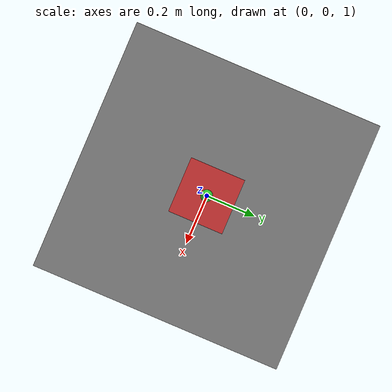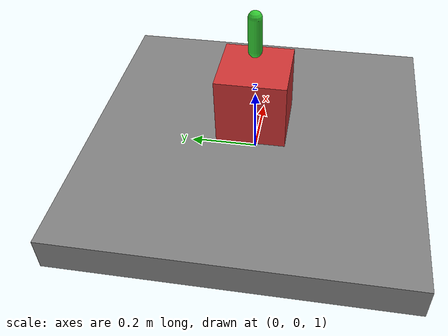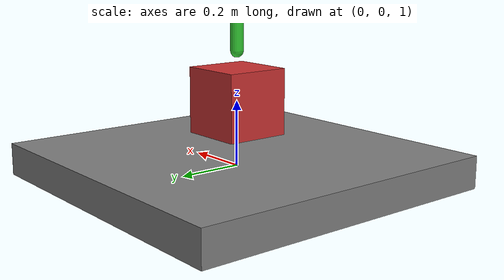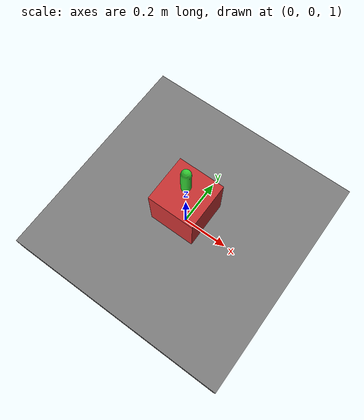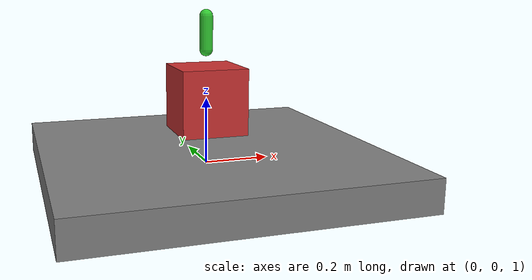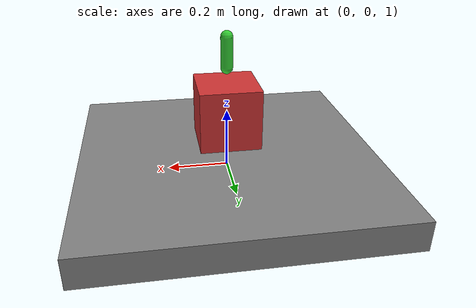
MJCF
<mujoco model="actuators">
  <worldbody>
    <!-- Fixed base -->
    <body name="base" pos="0 0 1">
      <geom name="base_geom" type="box" size="0.5 0.5 0.05" rgba="0.5 0.5 0.5 1"/>
      <site name="base_site" pos="0 0 0"/>

      <!-- Movable box with slide joint -->
      <body name="box" pos="0 0 0.2">
        <geom name="box_geom" type="box" size="0.1 0.1 0.1" rgba="0.8 0.2 0.2 1"/>
        <joint name="box_joint" type="slide" axis="0 0 1"/>
        <site name="box_site" pos="0 0 0"/>

        <!-- Child body with hinge joint -->
        <body name="child" pos="0 0 0.2">
          <joint name="child_joint" type="hinge" axis="1 0 0" limited="true" range="0 0.5"/>
          <geom name="child_geom" type="capsule" size="0.02 0.05" rgba="0.2 0.8 0.2 1"/>
          <site name="child_site" pos="0 0 0"/>
        </body>
      </body>
    </body>
  </worldbody>

  <actuator>
    <!-- Joint actuators -->
    <motor joint="box_joint" gear="100" ctrllimited="true" ctrlrange="-1 1" group="1"/>
    <position joint="child_joint" gear="10" inheritrange="1" group="2"/>

    <!-- Site actuators -->
    <general site="box_site" gear="1 0 0 0 0 0" dyntype="none" gaintype="fixed" biastype="none" group="3"/>
    <general site="child_site" refsite="box_site" gear="0 1 0 0 0 0" dyntype="integrator" gaintype="affine"/>

    <!-- Body actuator with simpler configuration -->
    <general body="box" gear="0 0 1 0 0 0" dyntype="filter" gaintype="fixed" biastype="none" forcelimited="true" forcerange="-100 100"/>

    <!-- Slider-crank actuator -->
    <general cranksite="box_site" slidersite="child_site" cranklength="0.1" gear="1 0 0 0 0 0"/>
  </actuator>
</mujoco>
